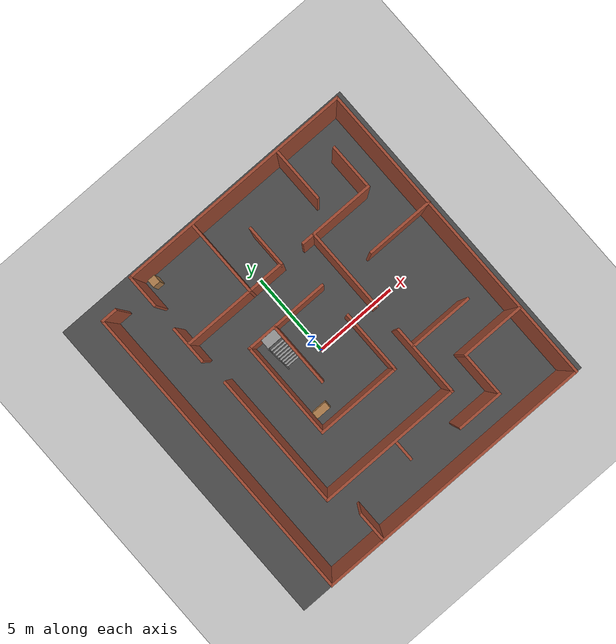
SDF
<sdf version="1.7">
 <world name="default">
  <model name="ground_plane">
   <static>1</static>
   <link name="link">
    <collision name="collision">
     <geometry><plane><normal>0 0 1</normal><size>100 100</size></plane></geometry>
     <surface>
      <contact><collide_bitmask>65535</collide_bitmask></contact>
      <friction><ode><mu>100</mu><mu2>50</mu2></ode></friction>
     </surface>
    </collision>
    <visual name="visual">
     <cast_shadows>0</cast_shadows>
     <geometry><plane><normal>0 0 1</normal><size>100 100</size></plane></geometry>
     <material>
      <script><uri>file://media/materials/scripts/gazebo.material</uri><name>Gazebo/Grey</name></script>
     </material>
    </visual>
   </link>
  </model>
  <model name="walls">
   <pose>0.822707 -0.094534 0 0 -0 0</pose>
   <link name="Wall_10">
    <collision name="Wall_10_Collision">
     <geometry><box><size>2 0.15 2.5</size></box></geometry>
     <pose>0 0 1.25 0 -0 0</pose>
    </collision>
    <visual name="Wall_10_Visual">
     <pose>0 0 1.25 0 -0 0</pose>
     <geometry><box><size>2 0.15 2.5</size></box></geometry>
     <material>
      <script><uri>file://media/materials/scripts/gazebo.material</uri><name>Gazebo/Bricks</name></script>
      <ambient>1 1 1 1</ambient>
     </material>
     <meta><layer>0</layer></meta>
    </visual>
    <pose>-5.68821 8.25 0 0 -0 -1.5708</pose>
   </link>
   <link name="Wall_13">
    <collision name="Wall_13_Collision">
     <geometry><box><size>2.25 0.15 2.5</size></box></geometry>
     <pose>0 0 1.25 0 -0 0</pose>
    </collision>
    <visual name="Wall_13_Visual">
     <pose>0 0 1.25 0 -0 0</pose>
     <geometry><box><size>2.25 0.15 2.5</size></box></geometry>
     <material>
      <script><uri>file://media/materials/scripts/gazebo.material</uri><name>Gazebo/Bricks</name></script>
      <ambient>1 1 1 1</ambient>
     </material>
     <meta><layer>0</layer></meta>
    </visual>
    <pose>-5.72244 4.67661 0 0 -0 -1.5708</pose>
   </link>
   <link name="Wall_15">
    <collision name="Wall_15_Collision">
     <geometry><box><size>4.25 0.15 2.5</size></box></geometry>
     <pose>0 0 1.25 0 -0 0</pose>
    </collision>
    <visual name="Wall_15_Visual">
     <pose>0 0 1.25 0 -0 0</pose>
     <geometry><box><size>4.25 0.15 2.5</size></box></geometry>
     <material>
      <script><uri>file://media/materials/scripts/gazebo.material</uri><name>Gazebo/Bricks</name></script>
      <ambient>1 1 1 1</ambient>
     </material>
     <meta><layer>0</layer></meta>
    </visual>
    <pose>-3.62592 4.70309 0 0 -0 0</pose>
   </link>
   <link name="Wall_16">
    <collision name="Wall_16_Collision">
     <geometry><box><size>4.5 0.15 2.5</size></box></geometry>
     <pose>0 0 1.25 0 -0 0</pose>
    </collision>
    <visual name="Wall_16_Visual">
     <pose>0 0 1.25 0 -0 0</pose>
     <geometry><box><size>4.5 0.15 2.5</size></box></geometry>
     <material>
      <script><uri>file://media/materials/scripts/gazebo.material</uri><name>Gazebo/Bricks</name></script>
      <ambient>1 1 1 1</ambient>
     </material>
     <meta><layer>0</layer></meta>
    </visual>
    <pose>-1.57592 6.87809 0 0 -0 1.5708</pose>
   </link>
   <link name="Wall_18">
    <collision name="Wall_18_Collision">
     <geometry><box><size>2.25 0.15 2.5</size></box></geometry>
     <pose>0 0 1.25 0 -0 0</pose>
    </collision>
    <visual name="Wall_18_Visual">
     <pose>0 0 1.25 0 -0 0</pose>
     <geometry><box><size>2.25 0.15 2.5</size></box></geometry>
     <material>
      <script><uri>file://media/materials/scripts/gazebo.material</uri><name>Gazebo/Bricks</name></script>
      <ambient>1 1 1 1</ambient>
     </material>
     <meta><layer>0</layer></meta>
    </visual>
    <pose>-0.525917 4.70309 0 0 -0 0</pose>
   </link>
   <link name="Wall_20">
    <collision name="Wall_20_Collision">
     <geometry><box><size>4.5 0.15 2.5</size></box></geometry>
     <pose>0 0 1.25 0 -0 0</pose>
    </collision>
    <visual name="Wall_20_Visual">
     <pose>0 0 1.25 0 -0 0</pose>
     <geometry><box><size>4.5 0.15 2.5</size></box></geometry>
     <material>
      <script><uri>file://media/materials/scripts/gazebo.material</uri><name>Gazebo/Bricks</name></script>
      <ambient>1 1 1 1</ambient>
     </material>
     <meta><layer>0</layer></meta>
    </visual>
    <pose>4.22205 4.74961 0 0 -0 0</pose>
   </link>
   <link name="Wall_22">
    <collision name="Wall_22_Collision">
     <geometry><box><size>3.25 0.15 2.5</size></box></geometry>
     <pose>0 0 1.25 0 -0 0</pose>
    </collision>
    <visual name="Wall_22_Visual">
     <pose>0 0 1.25 0 -0 0</pose>
     <geometry><box><size>3.25 0.15 2.5</size></box></geometry>
     <material>
      <script><uri>file://media/materials/scripts/gazebo.material</uri><name>Gazebo/Bricks</name></script>
      <ambient>1 1 1 1</ambient>
     </material>
     <meta><layer>0</layer></meta>
    </visual>
    <pose>4.0941 7.57286 0 0 -0 -1.5708</pose>
   </link>
   <link name="Wall_24">
    <collision name="Wall_24_Collision">
     <geometry><box><size>5 0.15 2.5</size></box></geometry>
     <pose>0 0 1.25 0 -0 0</pose>
    </collision>
    <visual name="Wall_24_Visual">
     <pose>0 0 1.25 0 -0 0</pose>
     <geometry><box><size>5 0.15 2.5</size></box></geometry>
     <material>
      <script><uri>file://media/materials/scripts/gazebo.material</uri><name>Gazebo/Bricks</name></script>
      <ambient>1 1 1 1</ambient>
     </material>
     <meta><layer>0</layer></meta>
    </visual>
    <pose>2.74491 2.32461 0 0 -0 -1.5708</pose>
   </link>
   <link name="Wall_26">
    <collision name="Wall_26_Collision">
     <geometry><box><size>4.25 0.15 2.5</size></box></geometry>
     <pose>0 0 1.25 0 -0 0</pose>
    </collision>
    <visual name="Wall_26_Visual">
     <pose>0 0 1.25 0 -0 0</pose>
     <geometry><box><size>4.25 0.15 2.5</size></box></geometry>
     <material>
      <script><uri>file://media/materials/scripts/gazebo.material</uri><name>Gazebo/Bricks</name></script>
      <ambient>1 1 1 1</ambient>
     </material>
     <meta><layer>0</layer></meta>
    </visual>
    <pose>2.79144 -3.76721 0 0 -0 -1.5708</pose>
   </link>
   <link name="Wall_27">
    <collision name="Wall_27_Collision">
     <geometry><box><size>8.5 0.15 2.5</size></box></geometry>
     <pose>0 0 1.25 0 -0 0</pose>
    </collision>
    <visual name="Wall_27_Visual">
     <pose>0 0 1.25 0 -0 0</pose>
     <geometry><box><size>8.5 0.15 2.5</size></box></geometry>
     <material>
      <script><uri>file://media/materials/scripts/gazebo.material</uri><name>Gazebo/Bricks</name></script>
      <ambient>1 1 1 1</ambient>
     </material>
     <meta><layer>0</layer></meta>
    </visual>
    <pose>-1.38356 -5.81721 0 0 -0 3.14159</pose>
   </link>
   <link name="Wall_28">
    <collision name="Wall_28_Collision">
     <geometry><box><size>8 0.15 2.5</size></box></geometry>
     <pose>0 0 1.25 0 -0 0</pose>
    </collision>
    <visual name="Wall_28_Visual">
     <pose>0 0 1.25 0 -0 0</pose>
     <geometry><box><size>8 0.15 2.5</size></box></geometry>
     <material>
      <script><uri>file://media/materials/scripts/gazebo.material</uri><name>Gazebo/Bricks</name></script>
      <ambient>1 1 1 1</ambient>
     </material>
     <meta><layer>0</layer></meta>
    </visual>
    <pose>-5.55856 -1.89221 0 0 -0 1.5708</pose>
   </link>
   <link name="Wall_30">
    <collision name="Wall_30_Collision">
     <geometry><box><size>1.25 0.15 2.5</size></box></geometry>
     <pose>0 0 1.25 0 -0 0</pose>
    </collision>
    <visual name="Wall_30_Visual">
     <pose>0 0 1.25 0 -0 0</pose>
     <geometry><box><size>1.25 0.15 2.5</size></box></geometry>
     <material>
      <script><uri>file://media/materials/scripts/gazebo.material</uri><name>Gazebo/Bricks</name></script>
      <ambient>1 1 1 1</ambient>
     </material>
     <meta><layer>0</layer></meta>
    </visual>
    <pose>-1.02353 -6.45437 0 0 -0 -1.5708</pose>
   </link>
   <link name="Wall_32">
    <collision name="Wall_32_Collision">
     <geometry><box><size>1.75 0.15 2.5</size></box></geometry>
     <pose>0 0 1.25 0 -0 0</pose>
    </collision>
    <visual name="Wall_32_Visual">
     <pose>0 0 1.25 0 -0 0</pose>
     <geometry><box><size>1.75 0.15 2.5</size></box></geometry>
     <material>
      <script><uri>file://media/materials/scripts/gazebo.material</uri><name>Gazebo/Bricks</name></script>
      <ambient>1 1 1 1</ambient>
     </material>
     <meta><layer>0</layer></meta>
    </visual>
    <pose>-4.74544 -8.28618 0 0 -0 -1.5708</pose>
   </link>
   <link name="Wall_34">
    <collision name="Wall_34_Collision">
     <geometry><box><size>3.75 0.15 2.5</size></box></geometry>
     <pose>0 0 1.25 0 -0 0</pose>
    </collision>
    <visual name="Wall_34_Visual">
     <pose>0 0 1.25 0 -0 0</pose>
     <geometry><box><size>3.75 0.15 2.5</size></box></geometry>
     <material>
      <script><uri>file://media/materials/scripts/gazebo.material</uri><name>Gazebo/Bricks</name></script>
      <ambient>1 1 1 1</ambient>
     </material>
     <meta><layer>0</layer></meta>
    </visual>
    <pose>4.63796 -2.83379 0 0 -0 0</pose>
   </link>
   <link name="Wall_36">
    <collision name="Wall_36_Collision">
     <geometry><box><size>4 0.15 2.5</size></box></geometry>
     <pose>0 0 1.25 0 -0 0</pose>
    </collision>
    <visual name="Wall_36_Visual">
     <pose>0 0 1.25 0 -0 0</pose>
     <geometry><box><size>4 0.15 2.5</size></box></geometry>
     <material>
      <script><uri>file://media/materials/scripts/gazebo.material</uri><name>Gazebo/Bricks</name></script>
      <ambient>1 1 1 1</ambient>
     </material>
     <meta><layer>0</layer></meta>
    </visual>
    <pose>6.26321 2.14427 0 0 -0 3.14159</pose>
   </link>
   <link name="Wall_38">
    <collision name="Wall_38_Collision">
     <geometry><box><size>5 0.15 2.5</size></box></geometry>
     <pose>0 0 1.25 0 -0 0</pose>
    </collision>
    <visual name="Wall_38_Visual">
     <pose>0 0 1.25 0 -0 0</pose>
     <geometry><box><size>5 0.15 2.5</size></box></geometry>
     <material>
      <script><uri>file://media/materials/scripts/gazebo.material</uri><name>Gazebo/Bricks</name></script>
      <ambient>1 1 1 1</ambient>
     </material>
     <meta><layer>0</layer></meta>
    </visual>
    <pose>-1.07581 2.51646 0 0 -0 3.14159</pose>
   </link>
   <link name="Wall_39">
    <collision name="Wall_39_Collision">
     <geometry><box><size>5.75 0.15 2.5</size></box></geometry>
     <pose>0 0 1.25 0 -0 0</pose>
    </collision>
    <visual name="Wall_39_Visual">
     <pose>0 0 1.25 0 -0 0</pose>
     <geometry><box><size>5.75 0.15 2.5</size></box></geometry>
     <material>
      <script><uri>file://media/materials/scripts/gazebo.material</uri><name>Gazebo/Bricks</name></script>
      <ambient>1 1 1 1</ambient>
     </material>
     <meta><layer>0</layer></meta>
    </visual>
    <pose>-3.50081 -0.283537 0 0 -0 -1.5708</pose>
   </link>
   <link name="Wall_40">
    <collision name="Wall_40_Collision">
     <geometry><box><size>5 0.15 2.5</size></box></geometry>
     <pose>0 0 1.25 0 -0 0</pose>
    </collision>
    <visual name="Wall_40_Visual">
     <pose>0 0 1.25 0 -0 0</pose>
     <geometry><box><size>5 0.15 2.5</size></box></geometry>
     <material>
      <script><uri>file://media/materials/scripts/gazebo.material</uri><name>Gazebo/Bricks</name></script>
      <ambient>1 1 1 1</ambient>
     </material>
     <meta><layer>0</layer></meta>
    </visual>
    <pose>-1.07581 -3.08354 0 0 -0 0</pose>
   </link>
   <link name="Wall_41">
    <collision name="Wall_41_Collision">
     <geometry><box><size>3.75 0.15 2.5</size></box></geometry>
     <pose>0 0 1.25 0 -0 0</pose>
    </collision>
    <visual name="Wall_41_Visual">
     <pose>0 0 1.25 0 -0 0</pose>
     <geometry><box><size>3.75 0.15 2.5</size></box></geometry>
     <material>
      <script><uri>file://media/materials/scripts/gazebo.material</uri><name>Gazebo/Bricks</name></script>
      <ambient>1 1 1 1</ambient>
     </material>
     <meta><layer>0</layer></meta>
    </visual>
    <pose>1.34919 -1.28354 0 0 -0 1.5708</pose>
   </link>
   <link name="Wall_43">
    <collision name="Wall_43_Collision">
     <geometry><box><size>1 0.15 2.5</size></box></geometry>
     <pose>0 0 1.25 0 -0 0</pose>
    </collision>
    <visual name="Wall_43_Visual">
     <pose>0 0 1.25 0 -0 0</pose>
     <geometry><box><size>1 0.15 2.5</size></box></geometry>
     <material>
      <script><uri>file://media/materials/scripts/gazebo.material</uri><name>Gazebo/Bricks</name></script>
      <ambient>1 1 1 1</ambient>
     </material>
     <meta><layer>0</layer></meta>
    </visual>
    <pose>-7.76321 8.425 0 0 -0 0</pose>
   </link>
   <link name="Wall_46">
    <collision name="Wall_46_Collision">
     <geometry><box><size>2.5 0.15 2.5</size></box></geometry>
     <pose>0 0 1.25 0 -0 0</pose>
    </collision>
    <visual name="Wall_46_Visual">
     <pose>0 0 1.25 0 -0 0</pose>
     <geometry><box><size>2.5 0.15 2.5</size></box></geometry>
     <material>
      <script><uri>file://media/materials/scripts/gazebo.material</uri><name>Gazebo/Bricks</name></script>
      <ambient>1 1 1 1</ambient>
     </material>
     <meta><layer>0</layer></meta>
    </visual>
    <pose>0.524083 5.87809 0 0 -0 1.5708</pose>
   </link>
   <link name="Wall_48">
    <collision name="Wall_48_Collision">
     <geometry><box><size>2.75 0.15 2.5</size></box></geometry>
     <pose>0 0 1.25 0 -0 0</pose>
    </collision>
    <visual name="Wall_48_Visual">
     <pose>0 0 1.25 0 -0 0</pose>
     <geometry><box><size>2.75 0.15 2.5</size></box></geometry>
     <material>
      <script><uri>file://media/materials/scripts/gazebo.material</uri><name>Gazebo/Bricks</name></script>
      <ambient>1 1 1 1</ambient>
     </material>
     <meta><layer>0</layer></meta>
    </visual>
    <pose>6.39705 6.04961 0 0 -0 1.5708</pose>
   </link>
   <link name="Wall_5">
    <collision name="Wall_5_Collision">
     <geometry><box><size>17.75 0.15 2.5</size></box></geometry>
     <pose>0 0 1.25 0 -0 0</pose>
    </collision>
    <visual name="Wall_5_Visual">
     <pose>0 0 1.25 0 -0 0</pose>
     <geometry><box><size>17.75 0.15 2.5</size></box></geometry>
     <material>
      <script><uri>file://media/materials/scripts/gazebo.material</uri><name>Gazebo/Bricks</name></script>
      <ambient>1 1 1 1</ambient>
     </material>
     <meta><layer>0</layer></meta>
    </visual>
    <pose>-8.18821 -0.375 0 0 -0 -1.5708</pose>
   </link>
   <link name="Wall_50">
    <collision name="Wall_50_Collision">
     <geometry><box><size>3.75 0.15 2.5</size></box></geometry>
     <pose>0 0 1.25 0 -0 0</pose>
    </collision>
    <visual name="Wall_50_Visual">
     <pose>0 0 1.25 0 -0 0</pose>
     <geometry><box><size>3.75 0.15 2.5</size></box></geometry>
     <material>
      <script><uri>file://media/materials/scripts/gazebo.material</uri><name>Gazebo/Bricks</name></script>
      <ambient>1 1 1 1</ambient>
     </material>
     <meta><layer>0</layer></meta>
    </visual>
    <pose>6.29516 -4.88084 0 0 -0 3.14159</pose>
   </link>
   <link name="Wall_51">
    <collision name="Wall_51_Collision">
     <geometry><box><size>2.75 0.15 2.5</size></box></geometry>
     <pose>0 0 1.25 0 -0 0</pose>
    </collision>
    <visual name="Wall_51_Visual">
     <pose>0 0 1.25 0 -0 0</pose>
     <geometry><box><size>2.75 0.15 2.5</size></box></geometry>
     <material>
      <script><uri>file://media/materials/scripts/gazebo.material</uri><name>Gazebo/Bricks</name></script>
      <ambient>1 1 1 1</ambient>
     </material>
     <meta><layer>0</layer></meta>
    </visual>
    <pose>4.49516 -6.18084 0 0 -0 -1.5708</pose>
   </link>
   <link name="Wall_53">
    <collision name="Wall_53_Collision">
     <geometry><box><size>2.75 0.15 2.5</size></box></geometry>
     <pose>0 0 1.25 0 -0 0</pose>
    </collision>
    <visual name="Wall_53_Visual">
     <pose>0 0 1.25 0 -0 0</pose>
     <geometry><box><size>2.75 0.15 2.5</size></box></geometry>
     <material>
      <script><uri>file://media/materials/scripts/gazebo.material</uri><name>Gazebo/Bricks</name></script>
      <ambient>1 1 1 1</ambient>
     </material>
     <meta><layer>0</layer></meta>
    </visual>
    <pose>3.19516 -7.48084 0 0 -0 3.14159</pose>
   </link>
   <link name="Wall_55">
    <collision name="Wall_55_Collision">
     <geometry><box><size>3.75 0.15 2.5</size></box></geometry>
     <pose>0 0 1.25 0 -0 0</pose>
    </collision>
    <visual name="Wall_55_Visual">
     <pose>0 0 1.25 0 -0 0</pose>
     <geometry><box><size>3.75 0.15 2.5</size></box></geometry>
     <material>
      <script><uri>file://media/materials/scripts/gazebo.material</uri><name>Gazebo/Bricks</name></script>
      <ambient>1 1 1 1</ambient>
     </material>
     <meta><layer>0</layer></meta>
    </visual>
    <pose>-1.83759 0.657177 0 0 -0 -1.5708</pose>
   </link>
   <link name="Wall_6">
    <collision name="Wall_6_Collision">
     <geometry><box><size>16.5 0.15 2.5</size></box></geometry>
     <pose>0 0 1.25 0 -0 0</pose>
    </collision>
    <visual name="Wall_6_Visual">
     <pose>0 0 1.25 0 -0 0</pose>
     <geometry><box><size>16.5 0.15 2.5</size></box></geometry>
     <material>
      <script><uri>file://media/materials/scripts/gazebo.material</uri><name>Gazebo/Bricks</name></script>
      <ambient>1 1 1 1</ambient>
     </material>
     <meta><layer>0</layer></meta>
    </visual>
    <pose>-0.013208 -9.175 0 0 -0 0</pose>
   </link>
   <link name="Wall_7">
    <collision name="Wall_7_Collision">
     <geometry><box><size>18.5 0.15 2.5</size></box></geometry>
     <pose>0 0 1.25 0 -0 0</pose>
    </collision>
    <visual name="Wall_7_Visual">
     <pose>0 0 1.25 0 -0 0</pose>
     <geometry><box><size>18.5 0.15 2.5</size></box></geometry>
     <material>
      <script><uri>file://media/materials/scripts/gazebo.material</uri><name>Gazebo/Bricks</name></script>
      <ambient>1 1 1 1</ambient>
     </material>
     <meta><layer>0</layer></meta>
    </visual>
    <pose>8.16179 -0 0 0 -0 1.5708</pose>
   </link>
   <link name="Wall_8">
    <collision name="Wall_8_Collision">
     <geometry><box><size>14 0.15 2.5</size></box></geometry>
     <pose>0 0 1.25 0 -0 0</pose>
    </collision>
    <visual name="Wall_8_Visual">
     <pose>0 0 1.25 0 -0 0</pose>
     <geometry><box><size>14 0.15 2.5</size></box></geometry>
     <material>
      <script><uri>file://media/materials/scripts/gazebo.material</uri><name>Gazebo/Bricks</name></script>
      <ambient>1 1 1 1</ambient>
     </material>
     <meta><layer>0</layer></meta>
    </visual>
    <pose>1.23679 9.175 0 0 -0 3.14159</pose>
   </link>
   <static>1</static>
  </model>
  <model name="asphalt_plane">
   <static>1</static>
   <link name="link">
    <collision name="collision"><geometry><box><size>20 20 0.1</size></box></geometry></collision>
    <visual name="visual">
     <cast_shadows>0</cast_shadows>
     <geometry><box><size>20 20 0.1</size></box></geometry>
     <material>
      <script>
       <uri>model://asphalt_plane/materials/scripts</uri>
       <uri>model://asphalt_plane/materials/textures</uri>
       <name>vrc/asphalt</name>
      </script>
     </material>
    </visual>
   </link>
   <pose>0.038483 -0.02122 0 0 -0 0</pose>
  </model>
  <model name="cabinet">
   <static>1</static>
   <link name="cabinet_bottom_plate">
    <inertial>
     <pose>0 0 -1 0 -0 0</pose>
     <inertia><ixx>2.05</ixx><ixy>0</ixy><ixz>0</ixz><iyy>2.05</iyy><iyz>0</iyz><izz>2.05</izz></inertia>
     <mass>25</mass>
    </inertial>
    <collision name="cabinet_bottom_plate_geom">
     <pose>0 0 0.01 0 -0 0</pose>
     <geometry><box><size>0.45 0.45 0.02</size></box></geometry>
    </collision>
    <visual name="cabinet_bottom_plate_geom_visual">
     <pose>0 0 0.01 0 -0 0</pose>
     <geometry><box><size>0.45 0.45 0.02</size></box></geometry>
     <material>
      <script><uri>file://media/materials/scripts/gazebo.material</uri><name>Gazebo/Wood</name></script>
     </material>
    </visual>
    <collision name="cabinet_bottom_plate_geom_cabinet_back_plate">
     <pose>0.235 0 0.51 0 -0 0</pose>
     <geometry><box><size>0.02 0.45 1.02</size></box></geometry>
    </collision>
    <visual name="cabinet_bottom_plate_geom_cabinet_back_plate_visual">
     <pose>0.235 0 0.51 0 -0 0</pose>
     <geometry><box><size>0.02 0.45 1.02</size></box></geometry>
     <material>
      <script><uri>file://media/materials/scripts/gazebo.material</uri><name>Gazebo/Wood</name></script>
     </material>
    </visual>
    <collision name="cabinet_bottom_plate_geom_cabinet_left_plate">
     <pose>0 0.235 0.51 0 -0 0</pose>
     <geometry><box><size>0.45 0.02 1.02</size></box></geometry>
    </collision>
    <visual name="cabinet_bottom_plate_geom_cabinet_left_plate_visual">
     <pose>0 0.235 0.51 0 -0 0</pose>
     <geometry><box><size>0.45 0.02 1.02</size></box></geometry>
     <material>
      <script><uri>file://media/materials/scripts/gazebo.material</uri><name>Gazebo/Wood</name></script>
     </material>
    </visual>
    <collision name="cabinet_bottom_plate_geom_cabinet_middle_plate">
     <pose>0 0 0.51 0 -0 0</pose>
     <geometry><box><size>0.45 0.45 0.02</size></box></geometry>
    </collision>
    <visual name="cabinet_bottom_plate_geom_cabinet_middle_plate_visual">
     <pose>0 0 0.51 0 -0 0</pose>
     <geometry><box><size>0.45 0.45 0.02</size></box></geometry>
     <material>
      <script><uri>file://media/materials/scripts/gazebo.material</uri><name>Gazebo/Wood</name></script>
     </material>
    </visual>
    <collision name="cabinet_bottom_plate_geom_cabinet_right_plate">
     <pose>0 -0.235 0.51 0 -0 0</pose>
     <geometry><box><size>0.45 0.02 1.02</size></box></geometry>
    </collision>
    <visual name="cabinet_bottom_plate_geom_cabinet_right_plate_visual">
     <pose>0 -0.235 0.51 0 -0 0</pose>
     <geometry><box><size>0.45 0.02 1.02</size></box></geometry>
     <material>
      <script><uri>file://media/materials/scripts/gazebo.material</uri><name>Gazebo/Wood</name></script>
     </material>
    </visual>
    <collision name="cabinet_bottom_plate_geom_cabinet_top_plate">
     <pose>0 0 1.01 0 -0 0</pose>
     <geometry><box><size>0.45 0.45 0.02</size></box></geometry>
    </collision>
    <visual name="cabinet_bottom_plate_geom_cabinet_top_plate_visual">
     <pose>0 0 1.01 0 -0 0</pose>
     <geometry><box><size>0.45 0.45 0.02</size></box></geometry>
     <material>
      <script><uri>file://media/materials/scripts/gazebo.material</uri><name>Gazebo/Wood</name></script>
     </material>
    </visual>
   </link>
   <pose>-4.275 8.561 0 0 -0 0</pose>
  </model>
  <model name="bookshelf">
   <static>1</static>
   <link name="link">
    <inertial><mass>1</mass></inertial>
    <collision name="back">
     <pose>0 0.005 0.6 0 -0 0</pose>
     <geometry><box><size>0.9 0.01 1.2</size></box></geometry>
    </collision>
    <visual name="visual1">
     <pose>0 0.005 0.6 0 -0 0</pose>
     <geometry><box><size>0.9 0.01 1.2</size></box></geometry>
     <material>
      <script><uri>file://media/materials/scripts/gazebo.material</uri><name>Gazebo/Wood</name></script>
     </material>
    </visual>
    <collision name="left_side">
     <pose>0.45 -0.195 0.6 0 -0 0</pose>
     <geometry><box><size>0.02 0.4 1.2</size></box></geometry>
    </collision>
    <visual name="visual2">
     <pose>0.45 -0.195 0.6 0 -0 0</pose>
     <geometry><box><size>0.02 0.4 1.2</size></box></geometry>
     <material>
      <script><uri>file://media/materials/scripts/gazebo.material</uri><name>Gazebo/Wood</name></script>
     </material>
    </visual>
    <collision name="right_side">
     <pose>-0.45 -0.195 0.6 0 -0 0</pose>
     <geometry><box><size>0.02 0.4 1.2</size></box></geometry>
    </collision>
    <visual name="visual3">
     <pose>-0.45 -0.195 0.6 0 -0 0</pose>
     <geometry><box><size>0.02 0.4 1.2</size></box></geometry>
     <material>
      <script><uri>file://media/materials/scripts/gazebo.material</uri><name>Gazebo/Wood</name></script>
     </material>
    </visual>
    <collision name="bottom">
     <pose>0 -0.195 0.03 0 -0 0</pose>
     <geometry><box><size>0.88 0.4 0.06</size></box></geometry>
    </collision>
    <visual name="visual4">
     <pose>0 -0.195 0.03 0 -0 0</pose>
     <geometry><box><size>0.88 0.4 0.06</size></box></geometry>
     <material>
      <script><uri>file://media/materials/scripts/gazebo.material</uri><name>Gazebo/Wood</name></script>
     </material>
    </visual>
    <collision name="top">
     <pose>0 -0.195 1.19 0 -0 0</pose>
     <geometry><box><size>0.88 0.4 0.02</size></box></geometry>
    </collision>
    <visual name="visual5">
     <pose>0 -0.195 1.19 0 -0 0</pose>
     <geometry><box><size>0.88 0.4 0.02</size></box></geometry>
     <material>
      <script><uri>file://media/materials/scripts/gazebo.material</uri><name>Gazebo/Wood</name></script>
     </material>
    </visual>
    <collision name="low_shelf">
     <pose>0 -0.195 0.43 0 -0 0</pose>
     <geometry><box><size>0.88 0.4 0.02</size></box></geometry>
    </collision>
    <visual name="visual6">
     <pose>0 -0.195 0.43 0 -0 0</pose>
     <geometry><box><size>0.88 0.4 0.02</size></box></geometry>
     <material>
      <script><uri>file://media/materials/scripts/gazebo.material</uri><name>Gazebo/Wood</name></script>
     </material>
    </visual>
    <collision name="high_shelf">
     <pose>0 -0.195 0.8 0 -0 0</pose>
     <geometry><box><size>0.88 0.4 0.02</size></box></geometry>
    </collision>
    <visual name="visual7">
     <pose>0 -0.195 0.8 0 -0 0</pose>
     <geometry><box><size>0.88 0.4 0.02</size></box></geometry>
     <material>
      <script><uri>file://media/materials/scripts/gazebo.material</uri><name>Gazebo/Wood</name></script>
     </material>
    </visual>
   </link>
   <pose>-2.07172 -2.19696 0 0 -0 0</pose>
  </model>
  <model name="ladder_60deg_0rails">
   <static>1</static>
   <link name="step0">
    <pose>0 0.15396 0.266667 0 -0 0</pose>
    <inertial>
     <mass>9.75482</mass>
     <inertia>
      <ixx>0.00957124</ixx>
      <iyy>0.65963</iyy>
      <izz>0.666842</izz>
      <ixy>0</ixy>
      <ixz>0</ixz>
      <iyz>0</iyz>
     </inertia>
    </inertial>
    <collision name="collision"><geometry><box><size>0.9 0.1016 0.0381</size></box></geometry></collision>
    <visual name="visual">
     <geometry><box><size>0.9 0.1016 0.0381</size></box></geometry>
     <material>
      <script><uri>file://media/materials/scripts/gazebo.material</uri><name>Gazebo/Grey</name></script>
     </material>
    </visual>
   </link>
   <link name="step1">
    <pose>0 0.30792 0.533333 0 -0 0</pose>
    <inertial>
     <mass>9.75482</mass>
     <inertia>
      <ixx>0.00957124</ixx>
      <iyy>0.65963</iyy>
      <izz>0.666842</izz>
      <ixy>0</ixy>
      <ixz>0</ixz>
      <iyz>0</iyz>
     </inertia>
    </inertial>
    <collision name="collision"><geometry><box><size>0.9 0.1016 0.0381</size></box></geometry></collision>
    <visual name="visual">
     <geometry><box><size>0.9 0.1016 0.0381</size></box></geometry>
     <material>
      <script><uri>file://media/materials/scripts/gazebo.material</uri><name>Gazebo/Grey</name></script>
     </material>
    </visual>
   </link>
   <link name="step2">
    <pose>0 0.46188 0.8 0 -0 0</pose>
    <inertial>
     <mass>9.75482</mass>
     <inertia>
      <ixx>0.00957124</ixx>
      <iyy>0.65963</iyy>
      <izz>0.666842</izz>
      <ixy>0</ixy>
      <ixz>0</ixz>
      <iyz>0</iyz>
     </inertia>
    </inertial>
    <collision name="collision"><geometry><box><size>0.9 0.1016 0.0381</size></box></geometry></collision>
    <visual name="visual">
     <geometry><box><size>0.9 0.1016 0.0381</size></box></geometry>
     <material>
      <script><uri>file://media/materials/scripts/gazebo.material</uri><name>Gazebo/Grey</name></script>
     </material>
    </visual>
   </link>
   <link name="step3">
    <pose>0 0.61584 1.06667 0 -0 0</pose>
    <inertial>
     <mass>9.75482</mass>
     <inertia>
      <ixx>0.00957124</ixx>
      <iyy>0.65963</iyy>
      <izz>0.666842</izz>
      <ixy>0</ixy>
      <ixz>0</ixz>
      <iyz>0</iyz>
     </inertia>
    </inertial>
    <collision name="collision"><geometry><box><size>0.9 0.1016 0.0381</size></box></geometry></collision>
    <visual name="visual">
     <geometry><box><size>0.9 0.1016 0.0381</size></box></geometry>
     <material>
      <script><uri>file://media/materials/scripts/gazebo.material</uri><name>Gazebo/Grey</name></script>
     </material>
    </visual>
   </link>
   <link name="step4">
    <pose>0 0.7698 1.33333 0 -0 0</pose>
    <inertial>
     <mass>9.75482</mass>
     <inertia>
      <ixx>0.00957124</ixx>
      <iyy>0.65963</iyy>
      <izz>0.666842</izz>
      <ixy>0</ixy>
      <ixz>0</ixz>
      <iyz>0</iyz>
     </inertia>
    </inertial>
    <collision name="collision"><geometry><box><size>0.9 0.1016 0.0381</size></box></geometry></collision>
    <visual name="visual">
     <geometry><box><size>0.9 0.1016 0.0381</size></box></geometry>
     <material>
      <script><uri>file://media/materials/scripts/gazebo.material</uri><name>Gazebo/Grey</name></script>
     </material>
    </visual>
   </link>
   <link name="step5">
    <pose>0 0.92376 1.6 0 -0 0</pose>
    <inertial>
     <mass>9.75482</mass>
     <inertia>
      <ixx>0.00957124</ixx>
      <iyy>0.65963</iyy>
      <izz>0.666842</izz>
      <ixy>0</ixy>
      <ixz>0</ixz>
      <iyz>0</iyz>
     </inertia>
    </inertial>
    <collision name="collision"><geometry><box><size>0.9 0.1016 0.0381</size></box></geometry></collision>
    <visual name="visual">
     <geometry><box><size>0.9 0.1016 0.0381</size></box></geometry>
     <material>
      <script><uri>file://media/materials/scripts/gazebo.material</uri><name>Gazebo/Grey</name></script>
     </material>
    </visual>
   </link>
   <link name="step6">
    <pose>0 1.07772 1.86667 0 -0 0</pose>
    <inertial>
     <mass>9.75482</mass>
     <inertia>
      <ixx>0.00957124</ixx>
      <iyy>0.65963</iyy>
      <izz>0.666842</izz>
      <ixy>0</ixy>
      <ixz>0</ixz>
      <iyz>0</iyz>
     </inertia>
    </inertial>
    <collision name="collision"><geometry><box><size>0.9 0.1016 0.0381</size></box></geometry></collision>
    <visual name="visual">
     <geometry><box><size>0.9 0.1016 0.0381</size></box></geometry>
     <material>
      <script><uri>file://media/materials/scripts/gazebo.material</uri><name>Gazebo/Grey</name></script>
     </material>
    </visual>
   </link>
   <link name="step7">
    <pose>0 1.23168 2.13333 0 -0 0</pose>
    <inertial>
     <mass>9.75482</mass>
     <inertia>
      <ixx>0.00957124</ixx>
      <iyy>0.65963</iyy>
      <izz>0.666842</izz>
      <ixy>0</ixy>
      <ixz>0</ixz>
      <iyz>0</iyz>
     </inertia>
    </inertial>
    <collision name="collision"><geometry><box><size>0.9 0.1016 0.0381</size></box></geometry></collision>
    <visual name="visual">
     <geometry><box><size>0.9 0.1016 0.0381</size></box></geometry>
     <material>
      <script><uri>file://media/materials/scripts/gazebo.material</uri><name>Gazebo/Grey</name></script>
     </material>
    </visual>
   </link>
   <link name="landing">
    <pose>0 1.68564 2.4 0 -0 0</pose>
    <inertial>
     <mass>57.6072</mass>
     <inertia><ixx>1.73518</ixx><iyy>3.89545</iyy><izz>5.6167</izz><ixy>0</ixy><ixz>0</ixz><iyz>0</iyz></inertia>
    </inertial>
    <collision name="collision"><geometry><box><size>0.9 0.6 0.1016</size></box></geometry></collision>
    <visual name="visual">
     <geometry><box><size>0.9 0.6 0.1016</size></box></geometry>
     <material>
      <script><uri>file://media/materials/scripts/gazebo.material</uri><name>Gazebo/Grey</name></script>
     </material>
    </visual>
   </link>
   <link name="left_side_wall">
    <pose>-0.45 0.69282 1.2 1.0472 -0 0</pose>
    <collision name="collision"><geometry><box><size>0.0508 2.85128 0.13</size></box></geometry></collision>
    <visual name="visual">
     <geometry><box><size>0.0508 2.85128 0.13</size></box></geometry>
     <material>
      <script><uri>file://media/materials/scripts/gazebo.material</uri><name>Gazebo/Grey</name></script>
     </material>
    </visual>
   </link>
   <link name="right_side_wall">
    <pose>0.45 0.69282 1.2 1.0472 -0 0</pose>
    <collision name="collision"><geometry><box><size>0.0508 2.85128 0.13</size></box></geometry></collision>
    <visual name="visual">
     <geometry><box><size>0.0508 2.85128 0.13</size></box></geometry>
     <material>
      <script><uri>file://media/materials/scripts/gazebo.material</uri><name>Gazebo/Grey</name></script>
     </material>
    </visual>
   </link>
   <pose>-1.53148 0.408636 0 0 -0 0</pose>
  </model>
 </world>
</sdf>
